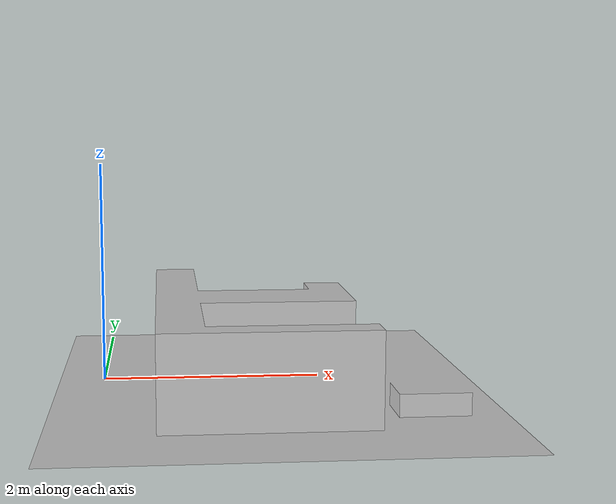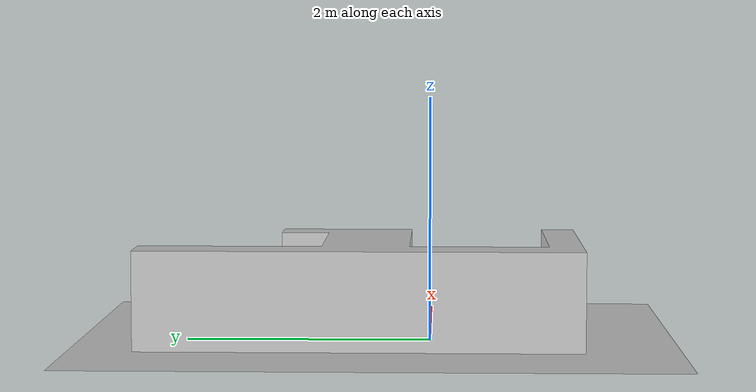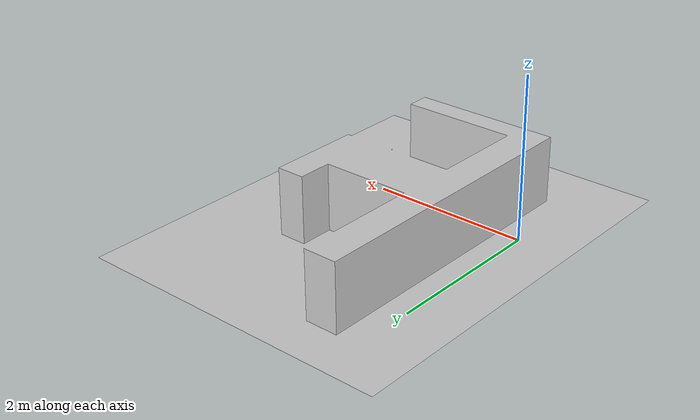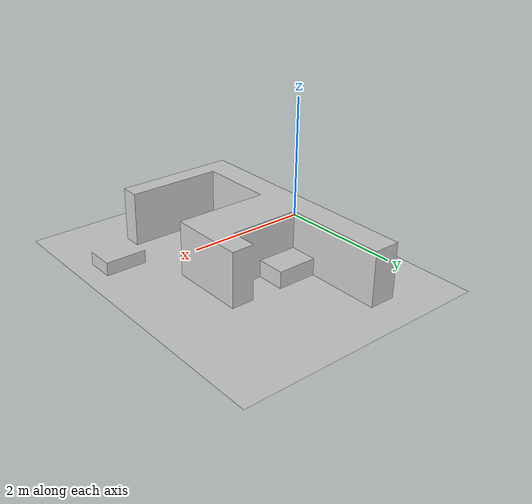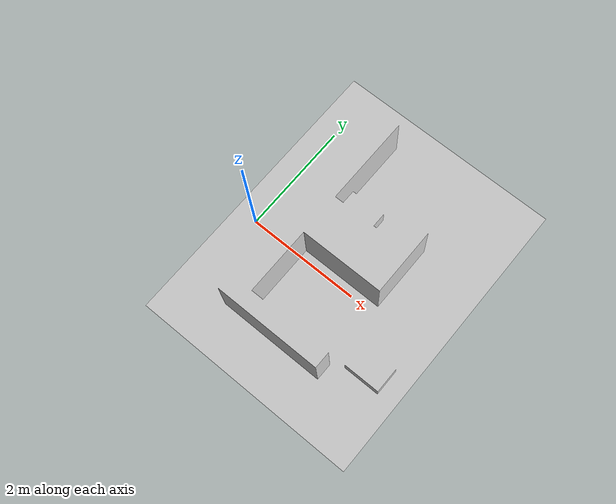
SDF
<?xml version="1.0" ?>
<sdf version="1.5">
  <model name="Povo">
    <static>true</static>

    <link name="link">
      <collision name="collision">
        <geometry>
          <mesh>
            <!--for Povo-->
            <!--for Laboratory-->
            <uri>file:///root/limo_ws/install/limo_description/share/limo_description/worlds/world_povo_resources/meshes/World.stl</uri>
          </mesh>
        </geometry>
      </collision>

      <visual name="visual1">
        <geometry>
          <mesh>
            <!--for Povo-->
            <!--for Laboratory-->
            <uri>file:///root/limo_ws/install/limo_description/share/limo_description/worlds/world_povo_resources/meshes/World.stl</uri>
          </mesh>
        </geometry>

        <material>
          <ambient>0.3 0.3 0.3 1</ambient>
          <diffuse>0.8 0.8 0.8 1</diffuse>
          <specular>0.1 0.1 0.1 1</specular>
        </material>
      </visual>
    </link>
  </model>
</sdf>
